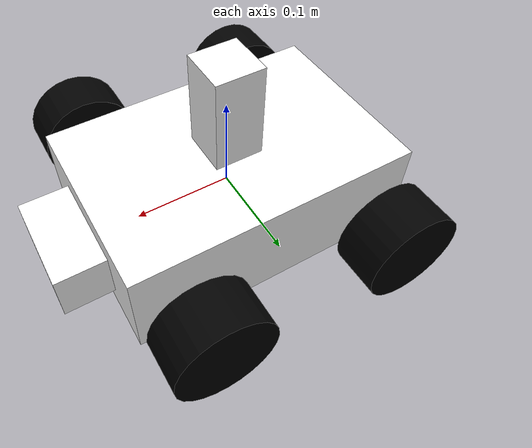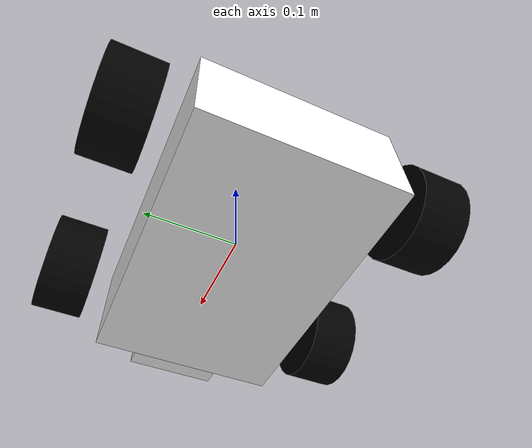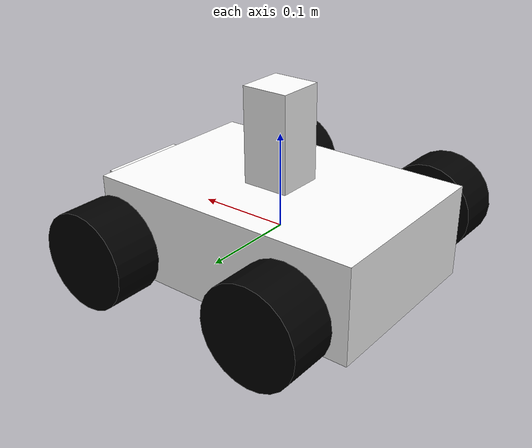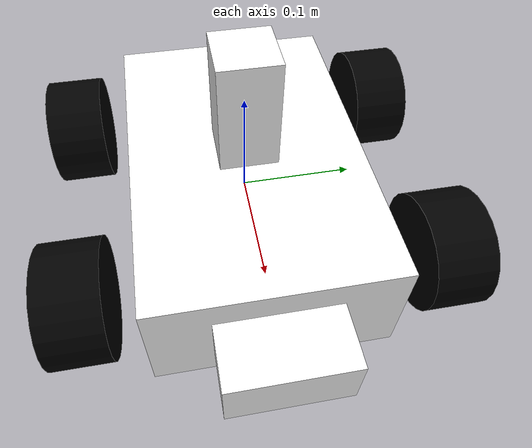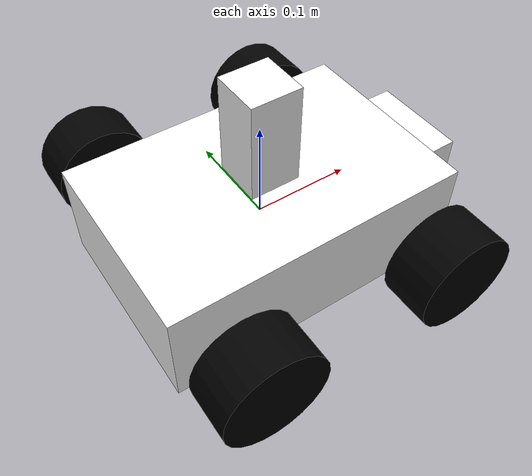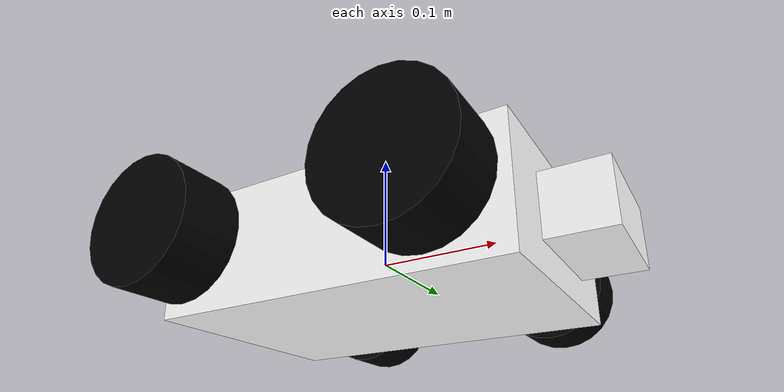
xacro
<?xml version="1.0"?>

<robot xmlns:xacro="http://www.ros.org/wiki/xacro"
    xmlns:sensor="http://playerstage.sourceforge.net/gazebo/xmlschema/#sensor"
        xmlns:controller="http://playerstage.sourceforge.net/gazebo/xmlschema/#controller"
        xmlns:interface="http://playerstage.sourceforge.net/gazebo/xmlschema/#interface"
    name="robot1_xacro">

    <xacro:property name="length_wheel" value="0.05" />
    <xacro:property name="radius_wheel" value="0.05" />
    <xacro:macro name="default_inertial" params="mass">
               <inertial>
                       <mass value="${mass}" />
                       <inertia ixx="1.0" ixy="0.0" ixz="0.0"
                                iyy="1.0" iyz="0.0"
                                izz="1.0" />
               </inertial>
    </xacro:macro>

     <link name="base_link">
        <visual>
            <geometry>
                    <box size="0.3 0.2 0.1"/>
                </geometry>
            <origin rpy="0 0 0" xyz="0 0 0"/>
            <material name="white">
                <color rgba="1 1 1 1"/>
            </material>
        </visual>
        <collision>
            <geometry>
                    <box size="0.3 0.2 0.1"/>
            </geometry>
        </collision>
        <xacro:default_inertial mass="10"/>
    </link>

    <gazebo reference="base_link">
        <material>Gazebo/Green</material>
        <turnGravityOff>false</turnGravityOff>
    </gazebo>

    <link name="laser_link">
        <visual>
            <geometry>
                    <box size="0.05 0.05 0.1"/>
                </geometry>
            <origin rpy="0 0 0" xyz="0 0 0"/>
            <material name="white">
                <color rgba="1 1 1 1"/>
            </material>
        </visual>
        <collision>
            <geometry>
                    <box size="0.05 0.05 0.1"/>
            </geometry>
        </collision>
        <xacro:default_inertial mass="1"/>
    </link>

    <gazebo reference="laser_link">
        <material>Gazebo/Blue</material>
        <turnGravityOff>false</turnGravityOff>
    </gazebo>

    <link name="bumper_link">
        <visual>
            <geometry>
                    <box size="0.05 0.1 0.05"/>
                </geometry>
            <origin rpy="0 0 0" xyz="0 0 0"/>
            <material name="white">
                <color rgba="1 1 1 1"/>
            </material>
        </visual>
        <collision name="bumper">
            <geometry>
                    <box size="0.05 0.1 0.05"/>
            </geometry>
        </collision>
        <xacro:default_inertial mass="1"/>
    </link>

    <gazebo reference="bumper_link">
        <material>Gazebo/Orange</material>
        <turnGravityOff>false</turnGravityOff>
    </gazebo>

    <link name="wheel_1">
        <visual>
                <geometry>
                    <cylinder length="${length_wheel}" radius="${radius_wheel}"/>
                </geometry>
            <origin rpy="0 0 0" xyz="0 0 0"/>
            <material name="black">
                <color rgba="0 0 0 1"/>
            </material>
        </visual>
        <collision>
            <geometry>
                    <cylinder length="${length_wheel}" radius="${radius_wheel}"/>
            </geometry>
        </collision>
        <xacro:default_inertial mass="1"/>
    </link>
    <gazebo reference="wheel_1">
        <material>Gazebo/black</material>
        <turnGravityOff>false</turnGravityOff>
    </gazebo>
    <link name="wheel_2">
        <visual>
                <geometry>
                    <cylinder length="${length_wheel}" radius="${radius_wheel}"/>
                </geometry>
            <origin rpy="0 0 0" xyz="0 0 0"/>
            <material name="black"/>
        </visual>
        <collision>
            <geometry>
                    <cylinder length="${length_wheel}" radius="${radius_wheel}"/>
            </geometry>
        </collision>
        <xacro:default_inertial mass="1"/>

    </link>
    <gazebo reference="wheel_2">
        <material>Gazebo/black</material>
        <turnGravityOff>false</turnGravityOff>
    </gazebo>
    <link name="wheel_3">
        <visual>
                <geometry>
                    <cylinder length="${length_wheel}" radius="${radius_wheel}"/>
                </geometry>

            <origin rpy="0 0 0" xyz="0 0 0"/>
            <material name="black"/>
        </visual>
        <collision>
            <geometry>
                    <cylinder length="${length_wheel}" radius="${radius_wheel}"/>
            </geometry>
        </collision>
        <xacro:default_inertial mass="1"/>
    </link>
    <gazebo reference="wheel_3">
        <material>Gazebo/black</material>
        <turnGravityOff>false</turnGravityOff>
    </gazebo>
    <link name="wheel_4">
        <visual>
                <geometry>
                    <cylinder length="${length_wheel}" radius="${radius_wheel}"/>
                </geometry>
            <origin rpy="0 0 0" xyz="0 0 0" />
            <material name="black"/>
        </visual>
        <collision>
            <geometry>
                    <cylinder length="${length_wheel}" radius="${radius_wheel}"/>
            </geometry>
        </collision>
        <xacro:default_inertial mass="1"/>
    </link>
    <gazebo reference="wheel_4">
        <material>Gazebo/black</material>
        <turnGravityOff>false</turnGravityOff>
    </gazebo>

    <joint name="base_to_laser" type="fixed">
        <parent link="base_link"/>
        <child link="laser_link"/>
        <origin rpy="0 0 0" xyz="0.0 0.0 0.1"/>
        <axis xyz="0 0 1"/>
    </joint>

    <joint name="base_to_bumper" type="fixed">
        <parent link="base_link"/>
        <child link="bumper_link"/>
        <origin rpy="0 0 0" xyz="0.175 0.0 0.0"/>
        <axis xyz="0 0 1"/>
    </joint>

    <joint name="base_to_wheel1" type="continuous">
        <parent link="base_link"/>
        <child link="wheel_1"/>
        <origin rpy="-1.5707 0 0" xyz="0.1 0.15 0"/>
        <axis xyz="0 0 1"/>
        <limit effort="100" velocity="100" />
    </joint>

    <joint name="base_to_wheel2" type="continuous">
        <axis xyz="0 0 1" />
        <limit effort="100" velocity="100" />
        <parent link="base_link"/>
   	<child link="wheel_2"/>
   	<origin rpy="-1.5707 0 0" xyz="-0.1 0.15 0"/>
    </joint>

    <joint name="base_to_wheel3" type="continuous">
        <parent link="base_link"/>
   	<axis xyz="0 0 1" />
   	<child link="wheel_3"/>
   	<origin rpy="-1.5707 0 0" xyz="0.1 -0.15 0"/>
    </joint>

    <joint name="base_to_wheel4" type="continuous">
       <parent link="base_link"/>
   	<axis xyz="0 0 1" />
   	<child link="wheel_4"/>
   	<origin rpy="-1.5707 0 0" xyz="-0.1 -0.15 0"/>
    </joint>

    <gazebo>
        <plugin name="skid_steer_drive_controller" filename="libgazebo_ros_skid_steer_drive.so">
    	    <alwaysOn>true</alwaysOn>
    	    <updateRate>100.0</updateRate>
    	    <robotNamespace>/</robotNamespace>
    	    <leftFrontJoint>base_to_wheel1</leftFrontJoint>
    	    <rightFrontJoint>base_to_wheel3</rightFrontJoint>
    	    <leftRearJoint>base_to_wheel2</leftRearJoint>
    	    <rightRearJoint>base_to_wheel4</rightRearJoint>
    	    <wheelSeparation>0.2</wheelSeparation>
    	    <wheelDiameter>0.1</wheelDiameter>
    	    <torque>2</torque>
    	    <commandTopic>cmd_vel</commandTopic>
    	    <robotBaseFrame>base_link</robotBaseFrame>
    	    <broadcastTF>1</broadcastTF>
        </plugin>
    </gazebo>

    <gazebo reference="laser_link">
        <sensor type="ray" name="head_hokuyo_sensor">
            <pose>0 0 0.1 0 0 0</pose>
            <visualize>true</visualize>
            <update_rate>1</update_rate>
            <ray>
                <scan>
                    <horizontal>
                        <samples>100</samples>
           	        <resolution>1</resolution>
                        <min_angle>-1.570796</min_angle>
                        <max_angle>1.570796</max_angle>
                    </horizontal>
        	</scan>
                <range>
                    <min>0.10</min>
                    <max>5.0</max>
                    <resolution>0.1</resolution>
                </range>
                <noise>
                    <type>gaussian</type>
                    <mean>0.0</mean>
                    <stddev>0.01</stddev>
                </noise>
            </ray>
            <plugin name="gazebo_ros_head_hokuyo_controller" filename="libgazebo_ros_laser.so">
                <topicName>/robottest/scan</topicName>
                <frameName>laser_link</frameName>
            </plugin>
        </sensor>
    </gazebo>

    <gazebo reference="bumper_link">
      <sensor name="pressure_sensor" type="contact">
        <always_on>1</always_on>
        <update_rate>1</update_rate>
        <visualize>true</visualize>
        <contact>
               <collision>base_link_fixed_joint_lump__bumper_collision_1</collision>
        </contact>
        <plugin name="robottest_gazebo_ros_bumper_controller" filename="libgazebo_ros_bumper.so">
            <alwaysOn>1</alwaysOn>
            <updateRate>1</updateRate>
            <bumperTopicName>/robottest/bumper</bumperTopicName>
            <frameName>bumper_link</frameName>
        </plugin>
      </sensor>
      <material>Gazebo/Orange</material>
    </gazebo>

</robot>
